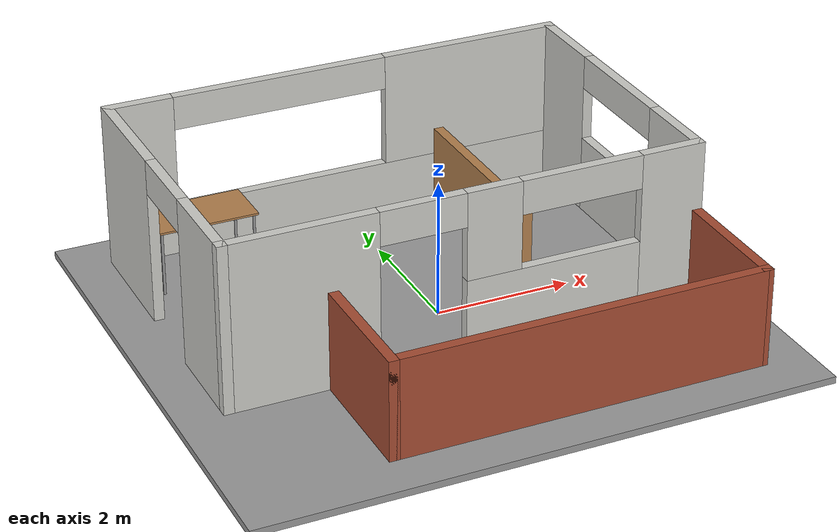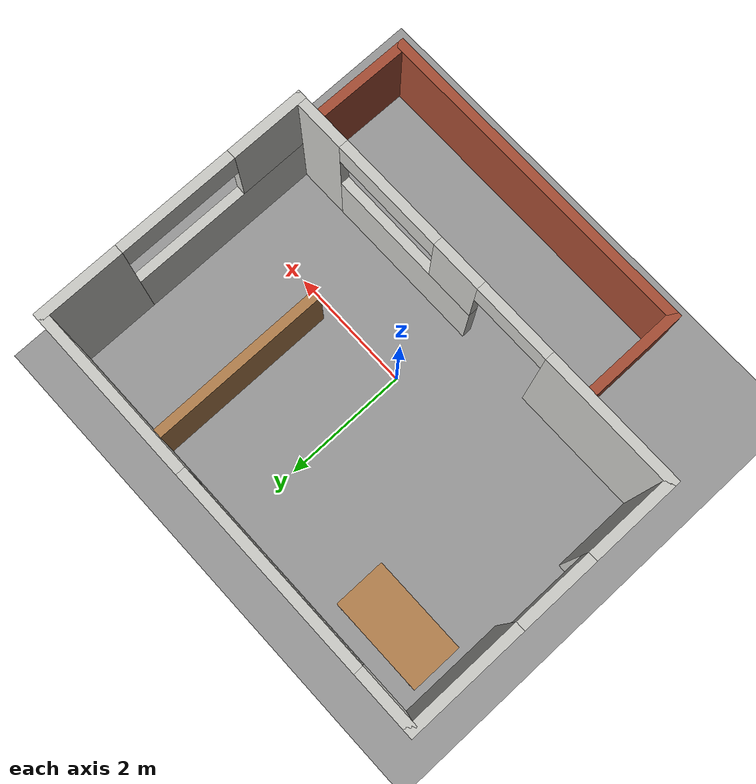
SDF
<sdf version="1.6">
 <world name="default">
  <light name="sun" type="directional">
   <pose>0 0 10 0 -0 0</pose>
   <diffuse>0.8 0.8 0.8 1</diffuse>
   <specular>0.2 0.2 0.2 1</specular>
   <attenuation>
    <range>1000</range>
    <constant>0.9</constant>
    <linear>0.01</linear>
    <quadratic>0.001</quadratic>
   </attenuation>
   <direction>-0.5 0.1 -0.9</direction>
  </light>
  <model name="ground_plane">
   <static>1</static>
   <link name="link">
    <collision name="collision">
     <geometry><plane><normal>0 0 1</normal><size>100 100</size></plane></geometry>
     <surface>
      <contact><collide_bitmask>65535</collide_bitmask></contact>
      <friction><ode><mu>100</mu><mu2>50</mu2></ode></friction>
     </surface>
    </collision>
    <visual name="visual">
     <cast_shadows>0</cast_shadows>
     <geometry><plane><normal>0 0 1</normal><size>100 100</size></plane></geometry>
     <material>
      <script><uri>file://media/materials/scripts/gazebo.material</uri><name>Gazebo/Grey</name></script>
     </material>
    </visual>
   </link>
  </model>
  <gravity>0 0 -9.8</gravity>
  <magnetic_field>6e-06 2.3e-05 -4.2e-05</magnetic_field>
  <atmosphere type="adiabatic"/>
  <physics name="default_physics" default="0" type="ode">
   <max_step_size>0.001</max_step_size>
   <real_time_factor>1</real_time_factor>
   <real_time_update_rate>1000</real_time_update_rate>
  </physics>
  <scene><ambient>0.4 0.4 0.4 1</ambient><background>0.7 0.7 0.7 1</background><shadows>1</shadows></scene>
  <spherical_coordinates>
   <surface_model>EARTH_WGS84</surface_model>
   <latitude_deg>0</latitude_deg>
   <longitude_deg>0</longitude_deg>
   <elevation>0</elevation>
   <heading_deg>0</heading_deg>
  </spherical_coordinates>
  <model name="my_world_model">
   <pose>-0.144603 0.024603 0 0 -0 0</pose>
   <link name="Wall_0">
    <pose>-0.000397 3.1154 0 0 -0 0</pose>
    <visual name="Wall_0_Visual_0">
     <pose>-2.99544 0 1.25 0 -0 0</pose>
     <geometry><box><size>1.00913 0.15 2.5</size></box></geometry>
     <material>
      <script><uri>file://media/materials/scripts/gazebo.material</uri><name>Gazebo/CeilingTiled</name></script>
      <ambient>1 1 1 1</ambient>
     </material>
     <meta><layer>0</layer></meta>
    </visual>
    <collision name="Wall_0_Collision_0">
     <geometry><box><size>1.00913 0.15 2.5</size></box></geometry>
     <pose>-2.99544 0 1.25 0 -0 0</pose>
    </collision>
    <visual name="Wall_0_Visual_1">
     <pose>0.504565 0 0.4 0 -0 0</pose>
     <geometry><box><size>5.99087 0.15 0.8</size></box></geometry>
     <material>
      <script><uri>file://media/materials/scripts/gazebo.material</uri><name>Gazebo/CeilingTiled</name></script>
      <ambient>1 1 1 1</ambient>
     </material>
     <meta><layer>0</layer></meta>
    </visual>
    <collision name="Wall_0_Collision_1">
     <geometry><box><size>5.99087 0.15 0.8</size></box></geometry>
     <pose>0.504565 0 0.4 0 -0 0</pose>
    </collision>
    <visual name="Wall_0_Visual_2">
     <pose>2.11957 0 1.65 0 -0 0</pose>
     <geometry><box><size>2.76087 0.15 1.7</size></box></geometry>
     <material>
      <script><uri>file://media/materials/scripts/gazebo.material</uri><name>Gazebo/CeilingTiled</name></script>
      <ambient>1 1 1 1</ambient>
     </material>
     <meta><layer>0</layer></meta>
    </visual>
    <collision name="Wall_0_Collision_2">
     <geometry><box><size>2.76087 0.15 1.7</size></box></geometry>
     <pose>2.11957 0 1.65 0 -0 0</pose>
    </collision>
    <visual name="Wall_0_Visual_3">
     <pose>-0.87587 0 2.25 0 -0 0</pose>
     <geometry><box><size>3.23 0.15 0.5</size></box></geometry>
     <material>
      <script><uri>file://media/materials/scripts/gazebo.material</uri><name>Gazebo/CeilingTiled</name></script>
      <ambient>1 1 1 1</ambient>
     </material>
     <meta><layer>0</layer></meta>
    </visual>
    <collision name="Wall_0_Collision_3">
     <geometry><box><size>3.23 0.15 0.5</size></box></geometry>
     <pose>-0.87587 0 2.25 0 -0 0</pose>
    </collision>
   </link>
   <link name="Wall_1">
    <pose>3.4246 0.940397 0 0 0 -1.5708</pose>
    <visual name="Wall_1_Visual_0">
     <pose>-1.5725 0 1.25 0 -0 0</pose>
     <geometry><box><size>1.355 0.15 2.5</size></box></geometry>
     <material>
      <script><uri>file://media/materials/scripts/gazebo.material</uri><name>Gazebo/CeilingTiled</name></script>
      <ambient>1 1 1 1</ambient>
     </material>
     <meta><layer>0</layer></meta>
    </visual>
    <collision name="Wall_1_Collision_0">
     <geometry><box><size>1.355 0.15 2.5</size></box></geometry>
     <pose>-1.5725 0 1.25 0 -0 0</pose>
    </collision>
    <visual name="Wall_1_Visual_1">
     <pose>0.6775 0 0.6 0 -0 0</pose>
     <geometry><box><size>3.145 0.15 1.2</size></box></geometry>
     <material>
      <script><uri>file://media/materials/scripts/gazebo.material</uri><name>Gazebo/CeilingTiled</name></script>
      <ambient>1 1 1 1</ambient>
     </material>
     <meta><layer>0</layer></meta>
    </visual>
    <collision name="Wall_1_Collision_1">
     <geometry><box><size>3.145 0.15 1.2</size></box></geometry>
     <pose>0.6775 0 0.6 0 -0 0</pose>
    </collision>
    <visual name="Wall_1_Visual_2">
     <pose>1.6275 0 1.85 0 -0 0</pose>
     <geometry><box><size>1.245 0.15 1.3</size></box></geometry>
     <material>
      <script><uri>file://media/materials/scripts/gazebo.material</uri><name>Gazebo/CeilingTiled</name></script>
      <ambient>1 1 1 1</ambient>
     </material>
     <meta><layer>0</layer></meta>
    </visual>
    <collision name="Wall_1_Collision_2">
     <geometry><box><size>1.245 0.15 1.3</size></box></geometry>
     <pose>1.6275 0 1.85 0 -0 0</pose>
    </collision>
    <visual name="Wall_1_Visual_3">
     <pose>0.055 0 2.25 0 -0 0</pose>
     <geometry><box><size>1.9 0.15 0.5</size></box></geometry>
     <material>
      <script><uri>file://media/materials/scripts/gazebo.material</uri><name>Gazebo/CeilingTiled</name></script>
      <ambient>1 1 1 1</ambient>
     </material>
     <meta><layer>0</layer></meta>
    </visual>
    <collision name="Wall_1_Collision_3">
     <geometry><box><size>1.9 0.15 0.5</size></box></geometry>
     <pose>0.055 0 2.25 0 -0 0</pose>
    </collision>
   </link>
   <link name="Wall_2">
    <pose>-0.000397 -1.2346 0 0 -0 3.14159</pose>
    <visual name="Wall_2_Visual_0">
     <pose>-3.02478 0 1.25 0 -0 0</pose>
     <geometry><box><size>0.950435 0.15 2.5</size></box></geometry>
     <material>
      <script><uri>file://media/materials/scripts/gazebo.material</uri><name>Gazebo/CeilingTiled</name></script>
      <ambient>1 1 1 1</ambient>
     </material>
     <meta><layer>0</layer></meta>
    </visual>
    <collision name="Wall_2_Collision_0">
     <geometry><box><size>0.950435 0.15 2.5</size></box></geometry>
     <pose>-3.02478 0 1.25 0 -0 0</pose>
    </collision>
    <visual name="Wall_2_Visual_1">
     <pose>2.3925 0 1.25 0 -0 0</pose>
     <geometry><box><size>2.215 0.15 2.5</size></box></geometry>
     <material>
      <script><uri>file://media/materials/scripts/gazebo.material</uri><name>Gazebo/CeilingTiled</name></script>
      <ambient>1 1 1 1</ambient>
     </material>
     <meta><layer>0</layer></meta>
    </visual>
    <collision name="Wall_2_Collision_1">
     <geometry><box><size>2.215 0.15 2.5</size></box></geometry>
     <pose>2.3925 0 1.25 0 -0 0</pose>
    </collision>
    <visual name="Wall_2_Visual_2">
     <pose>-1.25228 0 0.6 0 -0 0</pose>
     <geometry><box><size>2.59456 0.15 1.2</size></box></geometry>
     <material>
      <script><uri>file://media/materials/scripts/gazebo.material</uri><name>Gazebo/CeilingTiled</name></script>
      <ambient>1 1 1 1</ambient>
     </material>
     <meta><layer>0</layer></meta>
    </visual>
    <collision name="Wall_2_Collision_2">
     <geometry><box><size>2.59456 0.15 1.2</size></box></geometry>
     <pose>-1.25228 0 0.6 0 -0 0</pose>
    </collision>
    <visual name="Wall_2_Visual_3">
     <pose>-0.357283 0 1.85 0 -0 0</pose>
     <geometry><box><size>0.804565 0.15 1.3</size></box></geometry>
     <material>
      <script><uri>file://media/materials/scripts/gazebo.material</uri><name>Gazebo/CeilingTiled</name></script>
      <ambient>1 1 1 1</ambient>
     </material>
     <meta><layer>0</layer></meta>
    </visual>
    <collision name="Wall_2_Collision_3">
     <geometry><box><size>0.804565 0.15 1.3</size></box></geometry>
     <pose>-0.357283 0 1.85 0 -0 0</pose>
    </collision>
    <visual name="Wall_2_Visual_4">
     <pose>0.665 0 2.25 0 -0 0</pose>
     <geometry><box><size>1.24 0.15 0.5</size></box></geometry>
     <material>
      <script><uri>file://media/materials/scripts/gazebo.material</uri><name>Gazebo/CeilingTiled</name></script>
      <ambient>1 1 1 1</ambient>
     </material>
     <meta><layer>0</layer></meta>
    </visual>
    <collision name="Wall_2_Collision_4">
     <geometry><box><size>1.24 0.15 0.5</size></box></geometry>
     <pose>0.665 0 2.25 0 -0 0</pose>
    </collision>
    <visual name="Wall_2_Visual_5">
     <pose>-1.65457 0 2.25 0 -0 0</pose>
     <geometry><box><size>1.79 0.15 0.5</size></box></geometry>
     <material>
      <script><uri>file://media/materials/scripts/gazebo.material</uri><name>Gazebo/CeilingTiled</name></script>
      <ambient>1 1 1 1</ambient>
     </material>
     <meta><layer>0</layer></meta>
    </visual>
    <collision name="Wall_2_Collision_5">
     <geometry><box><size>1.79 0.15 0.5</size></box></geometry>
     <pose>-1.65457 0 2.25 0 -0 0</pose>
    </collision>
   </link>
   <link name="Wall_3">
    <pose>-3.4254 0.940397 0 0 -0 1.5708</pose>
    <visual name="Wall_3_Visual_0">
     <pose>-1.5325 0 1.25 0 -0 0</pose>
     <geometry><box><size>1.435 0.15 2.5</size></box></geometry>
     <material>
      <script><uri>file://media/materials/scripts/gazebo.material</uri><name>Gazebo/CeilingTiled</name></script>
      <ambient>1 1 1 1</ambient>
     </material>
     <meta><layer>0</layer></meta>
    </visual>
    <collision name="Wall_3_Collision_0">
     <geometry><box><size>1.435 0.15 2.5</size></box></geometry>
     <pose>-1.5325 0 1.25 0 -0 0</pose>
    </collision>
    <visual name="Wall_3_Visual_1">
     <pose>1.3275 0 1.25 0 -0 0</pose>
     <geometry><box><size>1.845 0.15 2.5</size></box></geometry>
     <material>
      <script><uri>file://media/materials/scripts/gazebo.material</uri><name>Gazebo/CeilingTiled</name></script>
      <ambient>1 1 1 1</ambient>
     </material>
     <meta><layer>0</layer></meta>
    </visual>
    <collision name="Wall_3_Collision_1">
     <geometry><box><size>1.845 0.15 2.5</size></box></geometry>
     <pose>1.3275 0 1.25 0 -0 0</pose>
    </collision>
    <visual name="Wall_3_Visual_2">
     <pose>-0.205 0 2.25 0 -0 0</pose>
     <geometry><box><size>1.22 0.15 0.5</size></box></geometry>
     <material>
      <script><uri>file://media/materials/scripts/gazebo.material</uri><name>Gazebo/CeilingTiled</name></script>
      <ambient>1 1 1 1</ambient>
     </material>
     <meta><layer>0</layer></meta>
    </visual>
    <collision name="Wall_3_Collision_2">
     <geometry><box><size>1.22 0.15 0.5</size></box></geometry>
     <pose>-0.205 0 2.25 0 -0 0</pose>
    </collision>
   </link>
   <link name="Wall_5">
    <collision name="Wall_5_Collision">
     <geometry><box><size>2 0.15 1.5</size></box></geometry>
     <pose>0 0 0.75 0 -0 0</pose>
    </collision>
    <visual name="Wall_5_Visual">
     <pose>0 0 0.75 0 -0 0</pose>
     <geometry><box><size>2 0.15 1.5</size></box></geometry>
     <material>
      <script><uri>file://media/materials/scripts/gazebo.material</uri><name>Gazebo/Bricks</name></script>
      <ambient>1 1 1 1</ambient>
     </material>
     <meta><layer>0</layer></meta>
    </visual>
    <pose>-1.9454 -2.1896 0 0 0 -1.5708</pose>
   </link>
   <link name="Wall_6">
    <collision name="Wall_6_Collision">
     <geometry><box><size>5.5 0.15 1.5</size></box></geometry>
     <pose>0 0 0.75 0 -0 0</pose>
    </collision>
    <visual name="Wall_6_Visual">
     <pose>0 0 0.75 0 -0 0</pose>
     <geometry><box><size>5.5 0.15 1.5</size></box></geometry>
     <material>
      <script><uri>file://media/materials/scripts/gazebo.material</uri><name>Gazebo/Bricks</name></script>
      <ambient>1 1 1 1</ambient>
     </material>
     <meta><layer>0</layer></meta>
    </visual>
    <pose>0.729603 -3.1146 0 0 -0 0</pose>
   </link>
   <link name="Wall_7">
    <collision name="Wall_7_Collision">
     <geometry><box><size>2.03011 0.15 1.5</size></box></geometry>
     <pose>0 0 0.75 0 -0 0</pose>
    </collision>
    <visual name="Wall_7_Visual">
     <pose>0 0 0.75 0 -0 0</pose>
     <geometry><box><size>2.03011 0.15 1.5</size></box></geometry>
     <material>
      <script><uri>file://media/materials/scripts/gazebo.material</uri><name>Gazebo/Bricks</name></script>
      <ambient>1 1 1 1</ambient>
     </material>
     <meta><layer>0</layer></meta>
    </visual>
    <pose>3.4146 -2.1746 0 0 -0 1.56016</pose>
   </link>
   <link name="Wall_9">
    <collision name="Wall_9_Collision">
     <geometry><box><size>3 0.15 1.2</size></box></geometry>
     <pose>0 0 0.6 0 -0 0</pose>
    </collision>
    <visual name="Wall_9_Visual">
     <pose>0 0 0.6 0 -0 0</pose>
     <geometry><box><size>3 0.15 1.2</size></box></geometry>
     <material>
      <script><uri>file://media/materials/scripts/gazebo.material</uri><name>Gazebo/Wood</name></script>
      <ambient>1 1 1 1</ambient>
     </material>
     <meta><layer>0</layer></meta>
    </visual>
    <pose>1.5946 1.6504 0 0 0 -1.5708</pose>
   </link>
   <static>1</static>
  </model>
  <model name="ground_plane_0">
   <static>1</static>
   <link name="link">
    <collision name="collision">
     <geometry><plane><normal>0 0 1</normal><size>100 100</size></plane></geometry>
     <surface>
      <contact><collide_bitmask>65535</collide_bitmask></contact>
      <friction><ode><mu>100</mu><mu2>50</mu2></ode></friction>
     </surface>
    </collision>
    <visual name="visual">
     <cast_shadows>0</cast_shadows>
     <geometry><plane><normal>0 0 1</normal><size>100 100</size></plane></geometry>
     <material>
      <script><uri>file://media/materials/scripts/gazebo.material</uri><name>Gazebo/Grey</name></script>
     </material>
    </visual>
   </link>
   <pose>-1.73365 -0.729866 0 0 -0 0</pose>
  </model>
  <model name="table">
   <static>1</static>
   <link name="link">
    <collision name="surface">
     <pose>0 0 1 0 -0 0</pose>
     <geometry><box><size>1.5 0.8 0.03</size></box></geometry>
     <surface><friction><ode><mu>0.6</mu><mu2>0.6</mu2></ode></friction></surface>
    </collision>
    <visual name="visual1">
     <pose>0 0 1 0 -0 0</pose>
     <geometry><box><size>1.5 0.8 0.03</size></box></geometry>
     <material>
      <script><uri>file://media/materials/scripts/gazebo.material</uri><name>Gazebo/Wood</name></script>
     </material>
    </visual>
    <collision name="front_left_leg">
     <pose>0.68 0.38 0.5 0 -0 0</pose>
     <geometry><cylinder><radius>0.02</radius><length>1</length></cylinder></geometry>
    </collision>
    <visual name="front_left_leg">
     <pose>0.68 0.38 0.5 0 -0 0</pose>
     <geometry><cylinder><radius>0.02</radius><length>1</length></cylinder></geometry>
     <material>
      <script><uri>file://media/materials/scripts/gazebo.material</uri><name>Gazebo/Grey</name></script>
     </material>
    </visual>
    <collision name="front_right_leg">
     <pose>0.68 -0.38 0.5 0 -0 0</pose>
     <geometry><cylinder><radius>0.02</radius><length>1</length></cylinder></geometry>
    </collision>
    <visual name="front_right_leg">
     <pose>0.68 -0.38 0.5 0 -0 0</pose>
     <geometry><cylinder><radius>0.02</radius><length>1</length></cylinder></geometry>
     <material>
      <script><uri>file://media/materials/scripts/gazebo.material</uri><name>Gazebo/Grey</name></script>
     </material>
    </visual>
    <collision name="back_right_leg">
     <pose>-0.68 -0.38 0.5 0 -0 0</pose>
     <geometry><cylinder><radius>0.02</radius><length>1</length></cylinder></geometry>
    </collision>
    <visual name="back_right_leg">
     <pose>-0.68 -0.38 0.5 0 -0 0</pose>
     <geometry><cylinder><radius>0.02</radius><length>1</length></cylinder></geometry>
     <material>
      <script><uri>file://media/materials/scripts/gazebo.material</uri><name>Gazebo/Grey</name></script>
     </material>
    </visual>
    <collision name="back_left_leg">
     <pose>-0.68 0.38 0.5 0 -0 0</pose>
     <geometry><cylinder><radius>0.02</radius><length>1</length></cylinder></geometry>
    </collision>
    <visual name="back_left_leg">
     <pose>-0.68 0.38 0.5 0 -0 0</pose>
     <geometry><cylinder><radius>0.02</radius><length>1</length></cylinder></geometry>
     <material>
      <script><uri>file://media/materials/scripts/gazebo.material</uri><name>Gazebo/Grey</name></script>
     </material>
    </visual>
   </link>
   <pose>-2.57709 2.4003 0 0 -0 0</pose>
  </model>
 </world>
</sdf>
